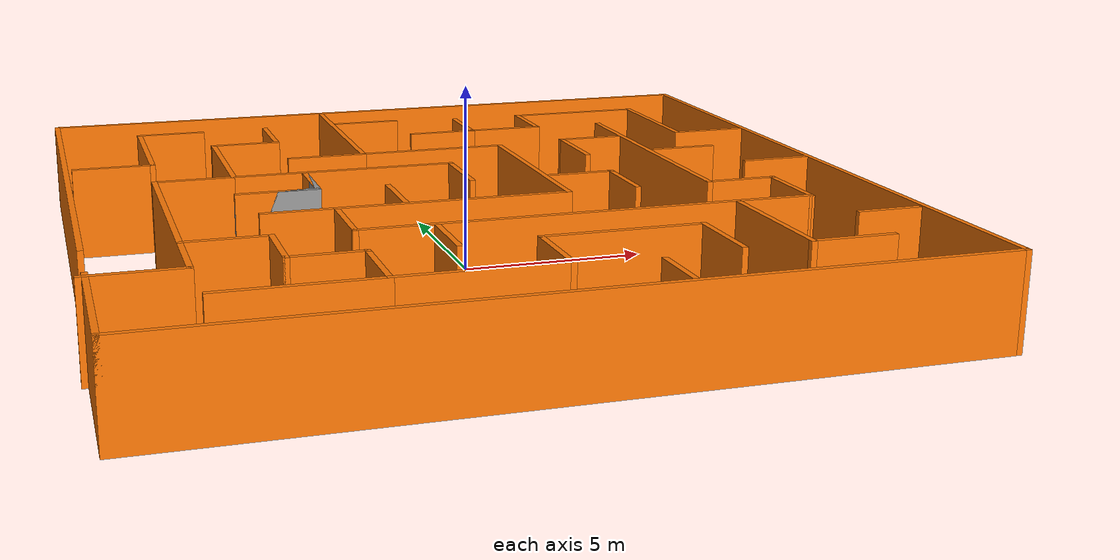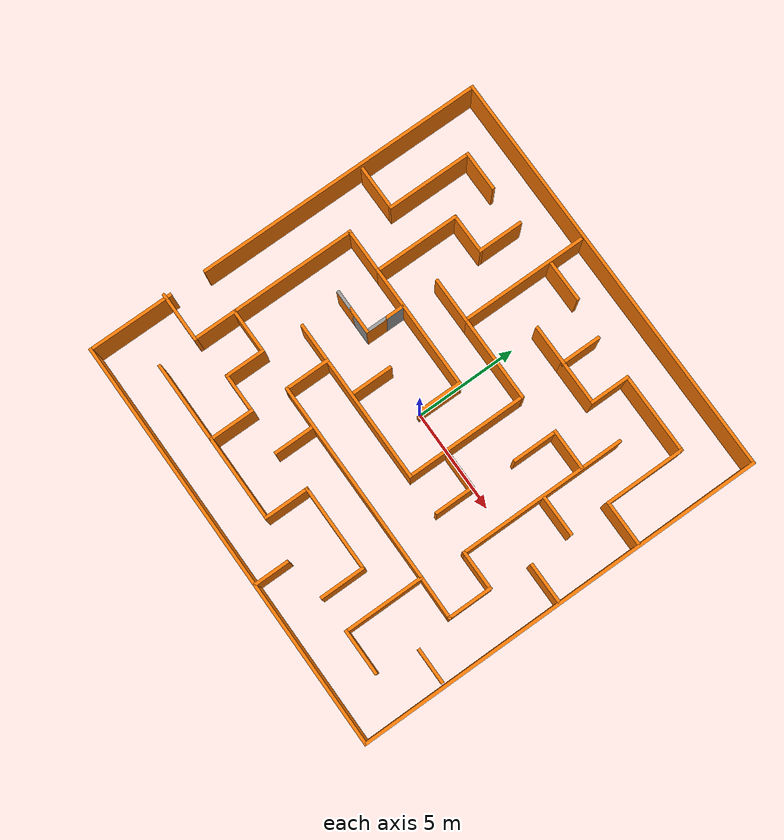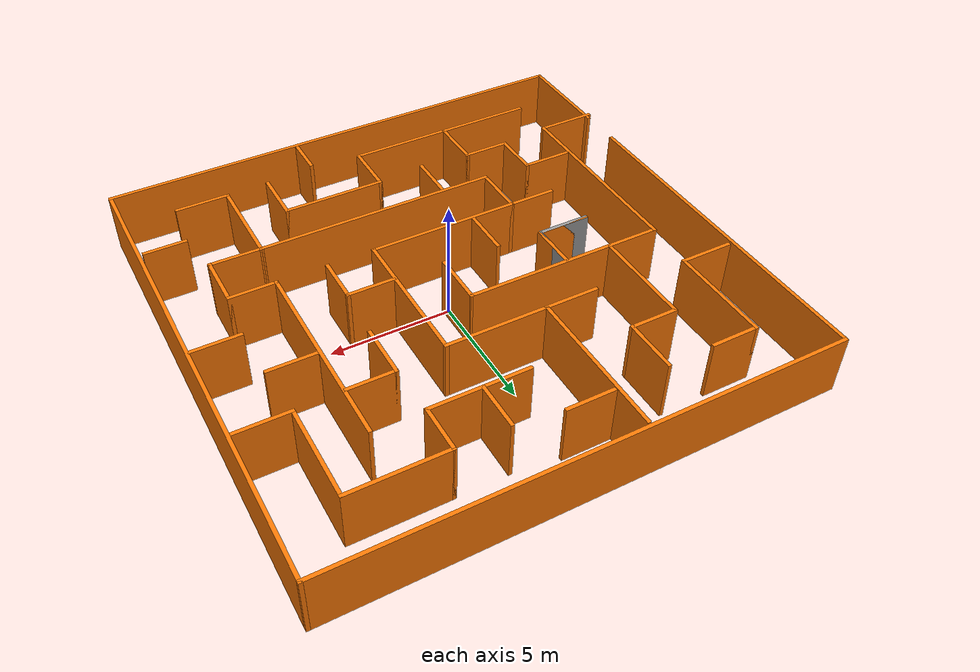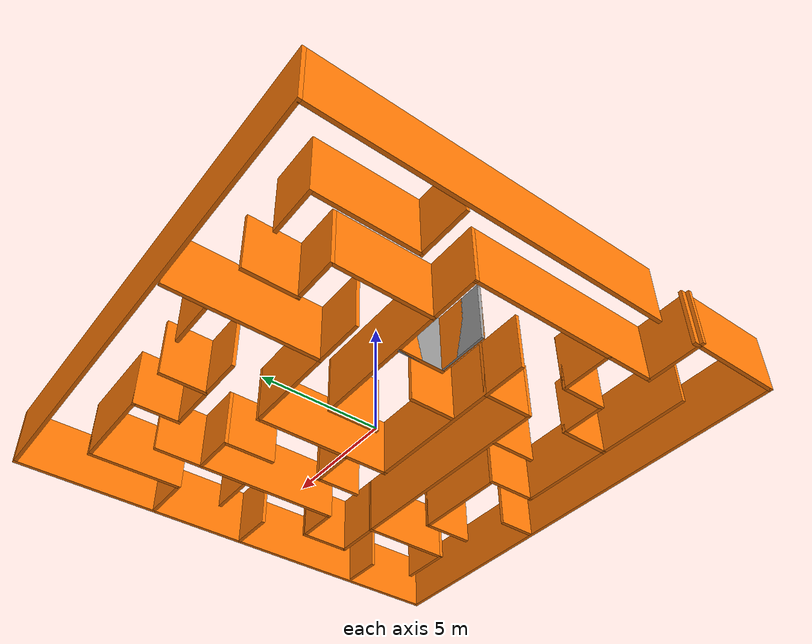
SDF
<?xml version='1.0'?>
<sdf version='1.7'>
  <model name='Untitled'>
    <pose>-0.094709 0.05645 0 0 -0 0</pose>
    <link name='Wall_0'>
      <collision name='Wall_0_Collision'>
        <geometry>
          <box>
            <size>14.25 0.15 2.5</size>
          </box>
        </geometry>
        <pose>0 0 1.25 0 -0 0</pose>
      </collision>
      <visual name='Wall_0_Visual'>
        <pose>0 0 1.25 0 -0 0</pose>
        <geometry>
          <box>
            <size>14.25 0.15 2.5</size>
          </box>
        </geometry>
        <material>
          <script>
            <uri>file://media/materials/scripts/gazebo.material</uri>
            <name>Gazebo/Grey</name>
          </script>
          <ambient>0.996078 0.47451 0.0196078 1</ambient>
        </material>
        <meta>
          <layer>0</layer>
        </meta>
      </visual>
      <pose>-10.1014 2.93572 0 0 -0 -1.5708</pose>
    </link>
    <link name='Wall_11'>
      <collision name='Wall_11_Collision'>
        <geometry>
          <box>
            <size>2.25 0.15 2.5</size>
          </box>
        </geometry>
        <pose>0 0 1.25 0 -0 0</pose>
      </collision>
      <visual name='Wall_11_Visual'>
        <pose>0 0 1.25 0 -0 0</pose>
        <geometry>
          <box>
            <size>2.25 0.15 2.5</size>
          </box>
        </geometry>
        <material>
          <script>
            <uri>file://media/materials/scripts/gazebo.material</uri>
            <name>Gazebo/Grey</name>
          </script>
          <ambient>0.996078 0.47451 0.0196078 1</ambient>
        </material>
        <meta>
          <layer>0</layer>
        </meta>
      </visual>
      <pose>-3.94861 7.08988 0 0 -0 -1.5708</pose>
    </link>
    <link name='Wall_12'>
      <collision name='Wall_12_Collision'>
        <geometry>
          <box>
            <size>2 0.15 2.5</size>
          </box>
        </geometry>
        <pose>0 0 1.25 0 -0 0</pose>
      </collision>
      <visual name='Wall_12_Visual'>
        <pose>0 0 1.25 0 -0 0</pose>
        <geometry>
          <box>
            <size>2 0.15 2.5</size>
          </box>
        </geometry>
        <material>
          <script>
            <uri>file://media/materials/scripts/gazebo.material</uri>
            <name>Gazebo/Grey</name>
          </script>
          <ambient>0.996078 0.47451 0.0196078 1</ambient>
        </material>
        <meta>
          <layer>0</layer>
        </meta>
      </visual>
      <pose>-4.87361 6.03988 0 0 -0 3.14159</pose>
    </link>
    <link name='Wall_13'>
      <collision name='Wall_13_Collision'>
        <geometry>
          <box>
            <size>4.25 0.15 2.5</size>
          </box>
        </geometry>
        <pose>0 0 1.25 0 -0 0</pose>
      </collision>
      <visual name='Wall_13_Visual'>
        <pose>0 0 1.25 0 -0 0</pose>
        <geometry>
          <box>
            <size>4.25 0.15 2.5</size>
          </box>
        </geometry>
        <material>
          <script>
            <uri>file://media/materials/scripts/gazebo.material</uri>
            <name>Gazebo/Grey</name>
          </script>
          <ambient>0.996078 0.47451 0.0196078 1</ambient>
        </material>
        <meta>
          <layer>0</layer>
        </meta>
      </visual>
      <pose>-5.79861 3.98988 0 0 -0 -1.5708</pose>
    </link>
    <link name='Wall_14'>
      <collision name='Wall_14_Collision'>
        <geometry>
          <box>
            <size>2.25 0.15 2.5</size>
          </box>
        </geometry>
        <pose>0 0 1.25 0 -0 0</pose>
      </collision>
      <visual name='Wall_14_Visual'>
        <pose>0 0 1.25 0 -0 0</pose>
        <geometry>
          <box>
            <size>2.25 0.15 2.5</size>
          </box>
        </geometry>
        <material>
          <script>
            <uri>file://media/materials/scripts/gazebo.material</uri>
            <name>Gazebo/Grey</name>
          </script>
          <ambient>0.996078 0.47451 0.0196078 1</ambient>
        </material>
        <meta>
          <layer>0</layer>
        </meta>
      </visual>
      <pose>-6.84861 1.93988 0 0 -0 3.14159</pose>
    </link>
    <link name='Wall_15'>
      <collision name='Wall_15_Collision'>
        <geometry>
          <box>
            <size>8.25 0.15 2.5</size>
          </box>
        </geometry>
        <pose>0 0 1.25 0 -0 0</pose>
      </collision>
      <visual name='Wall_15_Visual'>
        <pose>0 0 1.25 0 -0 0</pose>
        <geometry>
          <box>
            <size>8.25 0.15 2.5</size>
          </box>
        </geometry>
        <material>
          <script>
            <uri>file://media/materials/scripts/gazebo.material</uri>
            <name>Gazebo/Grey</name>
          </script>
          <ambient>0.996078 0.47451 0.0196078 1</ambient>
        </material>
        <meta>
          <layer>0</layer>
        </meta>
      </visual>
      <pose>-7.89861 -2.11012 0 0 -0 -1.5708</pose>
    </link>
    <link name='Wall_16'>
      <collision name='Wall_16_Collision'>
        <geometry>
          <box>
            <size>2.5 0.15 2.5</size>
          </box>
        </geometry>
        <pose>0 0 1.25 0 -0 0</pose>
      </collision>
      <visual name='Wall_16_Visual'>
        <pose>0 0 1.25 0 -0 0</pose>
        <geometry>
          <box>
            <size>2.5 0.15 2.5</size>
          </box>
        </geometry>
        <material>
          <script>
            <uri>file://media/materials/scripts/gazebo.material</uri>
            <name>Gazebo/Grey</name>
          </script>
          <ambient>0.996078 0.47451 0.0196078 1</ambient>
        </material>
        <meta>
          <layer>0</layer>
        </meta>
      </visual>
      <pose>-9.07361 -6.16012 0 0 -0 3.14159</pose>
    </link>
    <link name='Wall_18'>
      <collision name='Wall_18_Collision'>
        <geometry>
          <box>
            <size>2.25 0.15 2.5</size>
          </box>
        </geometry>
        <pose>0 0 1.25 0 -0 0</pose>
      </collision>
      <visual name='Wall_18_Visual'>
        <pose>0 0 1.25 0 -0 0</pose>
        <geometry>
          <box>
            <size>2.25 0.15 2.5</size>
          </box>
        </geometry>
        <material>
          <script>
            <uri>file://media/materials/scripts/gazebo.material</uri>
            <name>Gazebo/Grey</name>
          </script>
          <ambient>0.996078 0.47451 0.0196078 1</ambient>
        </material>
        <meta>
          <layer>0</layer>
        </meta>
      </visual>
      <pose>-6.83639 -4.10416 0 0 -0 0</pose>
    </link>
    <link name='Wall_19'>
      <collision name='Wall_19_Collision'>
        <geometry>
          <box>
            <size>2 0.15 2.5</size>
          </box>
        </geometry>
        <pose>0 0 1.25 0 -0 0</pose>
      </collision>
      <visual name='Wall_19_Visual'>
        <pose>0 0 1.25 0 -0 0</pose>
        <geometry>
          <box>
            <size>2 0.15 2.5</size>
          </box>
        </geometry>
        <material>
          <script>
            <uri>file://media/materials/scripts/gazebo.material</uri>
            <name>Gazebo/Grey</name>
          </script>
          <ambient>0.996078 0.47451 0.0196078 1</ambient>
        </material>
        <meta>
          <layer>0</layer>
        </meta>
      </visual>
      <pose>-5.78639 -5.02916 0 0 -0 -1.5708</pose>
    </link>
    <link name='Wall_2'>
      <collision name='Wall_2_Collision'>
        <geometry>
          <box>
            <size>4.25 0.15 2.5</size>
          </box>
        </geometry>
        <pose>0 0 1.25 0 -0 0</pose>
      </collision>
      <visual name='Wall_2_Visual'>
        <pose>0 0 1.25 0 -0 0</pose>
        <geometry>
          <box>
            <size>4.25 0.15 2.5</size>
          </box>
        </geometry>
        <material>
          <script>
            <uri>file://media/materials/scripts/gazebo.material</uri>
            <name>Gazebo/Grey</name>
          </script>
          <ambient>0.996078 0.47451 0.0196078 1</ambient>
        </material>
        <meta>
          <layer>0</layer>
        </meta>
      </visual>
      <pose>-10.1014 -8 0 0 -0 -1.5708</pose>
    </link>
    <link name='Wall_20'>
      <collision name='Wall_20_Collision'>
        <geometry>
          <box>
            <size>2 0.15 2.5</size>
          </box>
        </geometry>
        <pose>0 0 1.25 0 -0 0</pose>
      </collision>
      <visual name='Wall_20_Visual'>
        <pose>0 0 1.25 0 -0 0</pose>
        <geometry>
          <box>
            <size>2 0.15 2.5</size>
          </box>
        </geometry>
        <material>
          <script>
            <uri>file://media/materials/scripts/gazebo.material</uri>
            <name>Gazebo/Grey</name>
          </script>
          <ambient>0.996078 0.47451 0.0196078 1</ambient>
        </material>
        <meta>
          <layer>0</layer>
        </meta>
      </visual>
      <pose>-4.86139 -5.95416 0 0 -0 0</pose>
    </link>
    <link name='Wall_21'>
      <collision name='Wall_21_Collision'>
        <geometry>
          <box>
            <size>2.25 0.15 2.5</size>
          </box>
        </geometry>
        <pose>0 0 1.25 0 -0 0</pose>
      </collision>
      <visual name='Wall_21_Visual'>
        <pose>0 0 1.25 0 -0 0</pose>
        <geometry>
          <box>
            <size>2.25 0.15 2.5</size>
          </box>
        </geometry>
        <material>
          <script>
            <uri>file://media/materials/scripts/gazebo.material</uri>
            <name>Gazebo/Grey</name>
          </script>
          <ambient>0.996078 0.47451 0.0196078 1</ambient>
        </material>
        <meta>
          <layer>0</layer>
        </meta>
      </visual>
      <pose>-3.93639 -7.00416 0 0 -0 -1.5708</pose>
    </link>
    <link name='Wall_22'>
      <collision name='Wall_22_Collision'>
        <geometry>
          <box>
            <size>4 0.15 2.5</size>
          </box>
        </geometry>
        <pose>0 0 1.25 0 -0 0</pose>
      </collision>
      <visual name='Wall_22_Visual'>
        <pose>0 0 1.25 0 -0 0</pose>
        <geometry>
          <box>
            <size>4 0.15 2.5</size>
          </box>
        </geometry>
        <material>
          <script>
            <uri>file://media/materials/scripts/gazebo.material</uri>
            <name>Gazebo/Grey</name>
          </script>
          <ambient>0.996078 0.47451 0.0196078 1</ambient>
        </material>
        <meta>
          <layer>0</layer>
        </meta>
      </visual>
      <pose>-5.86139 -8.05416 0 0 -0 3.14159</pose>
    </link>
    <link name='Wall_24'>
      <collision name='Wall_24_Collision'>
        <geometry>
          <box>
            <size>4.25 0.15 2.5</size>
          </box>
        </geometry>
        <pose>0 0 1.25 0 -0 0</pose>
      </collision>
      <visual name='Wall_24_Visual'>
        <pose>0 0 1.25 0 -0 0</pose>
        <geometry>
          <box>
            <size>4.25 0.15 2.5</size>
          </box>
        </geometry>
        <material>
          <script>
            <uri>file://media/materials/scripts/gazebo.material</uri>
            <name>Gazebo/Grey</name>
          </script>
          <ambient>0.996078 0.47451 0.0196078 1</ambient>
        </material>
        <meta>
          <layer>0</layer>
        </meta>
      </visual>
      <pose>-1.88639 -8.05416 0 0 -0 0</pose>
    </link>
    <link name='Wall_25'>
      <collision name='Wall_25_Collision'>
        <geometry>
          <box>
            <size>2.25 0.15 2.5</size>
          </box>
        </geometry>
        <pose>0 0 1.25 0 -0 0</pose>
      </collision>
      <visual name='Wall_25_Visual'>
        <pose>0 0 1.25 0 -0 0</pose>
        <geometry>
          <box>
            <size>2.25 0.15 2.5</size>
          </box>
        </geometry>
        <material>
          <script>
            <uri>file://media/materials/scripts/gazebo.material</uri>
            <name>Gazebo/Grey</name>
          </script>
          <ambient>0.996078 0.47451 0.0196078 1</ambient>
        </material>
        <meta>
          <layer>0</layer>
        </meta>
      </visual>
      <pose>0.163609 -7.00416 0 0 -0 1.5708</pose>
    </link>
    <link name='Wall_28'>
      <collision name='Wall_28_Collision'>
        <geometry>
          <box>
            <size>4.25 0.15 2.5</size>
          </box>
        </geometry>
        <pose>0 0 1.25 0 -0 0</pose>
      </collision>
      <visual name='Wall_28_Visual'>
        <pose>0 0 1.25 0 -0 0</pose>
        <geometry>
          <box>
            <size>4.25 0.15 2.5</size>
          </box>
        </geometry>
        <material>
          <script>
            <uri>file://media/materials/scripts/gazebo.material</uri>
            <name>Gazebo/Grey</name>
          </script>
          <ambient>0.996078 0.47451 0.0196078 1</ambient>
        </material>
        <meta>
          <layer>0</layer>
        </meta>
      </visual>
      <pose>2.21361 -5.95416 0 0 -0 0</pose>
    </link>
    <link name='Wall_29'>
      <collision name='Wall_29_Collision'>
        <geometry>
          <box>
            <size>2.25 0.15 2.5</size>
          </box>
        </geometry>
        <pose>0 0 1.25 0 -0 0</pose>
      </collision>
      <visual name='Wall_29_Visual'>
        <pose>0 0 1.25 0 -0 0</pose>
        <geometry>
          <box>
            <size>2.25 0.15 2.5</size>
          </box>
        </geometry>
        <material>
          <script>
            <uri>file://media/materials/scripts/gazebo.material</uri>
            <name>Gazebo/Grey</name>
          </script>
          <ambient>0.996078 0.47451 0.0196078 1</ambient>
        </material>
        <meta>
          <layer>0</layer>
        </meta>
      </visual>
      <pose>4.26361 -7.00416 0 0 -0 -1.5708</pose>
    </link>
    <link name='Wall_3'>
      <collision name='Wall_3_Collision'>
        <geometry>
          <box>
            <size>20.5 0.15 2.5</size>
          </box>
        </geometry>
        <pose>0 0 1.25 0 -0 0</pose>
      </collision>
      <visual name='Wall_3_Visual'>
        <pose>0 0 1.25 0 -0 0</pose>
        <geometry>
          <box>
            <size>20.5 0.15 2.5</size>
          </box>
        </geometry>
        <material>
          <script>
            <uri>file://media/materials/scripts/gazebo.material</uri>
            <name>Gazebo/Grey</name>
          </script>
          <ambient>0.996078 0.47451 0.0196078 1</ambient>
        </material>
        <meta>
          <layer>0</layer>
        </meta>
      </visual>
      <pose>0.073606 -10.05 0 0 -0 0</pose>
    </link>
    <link name='Wall_31'>
      <collision name='Wall_31_Collision'>
        <geometry>
          <box>
            <size>1.75 0.15 2.5</size>
          </box>
        </geometry>
        <pose>0 0 1.25 0 -0 0</pose>
      </collision>
      <visual name='Wall_31_Visual'>
        <pose>0 0 1.25 0 -0 0</pose>
        <geometry>
          <box>
            <size>1.75 0.15 2.5</size>
          </box>
        </geometry>
        <material>
          <script>
            <uri>file://media/materials/scripts/gazebo.material</uri>
            <name>Gazebo/Grey</name>
          </script>
          <ambient>0.996078 0.47451 0.0196078 1</ambient>
        </material>
        <meta>
          <layer>0</layer>
        </meta>
      </visual>
      <pose>2.20418 -9.21084 0 0 -0 1.5708</pose>
    </link>
    <link name='Wall_33'>
      <collision name='Wall_33_Collision'>
        <geometry>
          <box>
            <size>2.25 0.15 2.5</size>
          </box>
        </geometry>
        <pose>0 0 1.25 0 -0 0</pose>
      </collision>
      <visual name='Wall_33_Visual'>
        <pose>0 0 1.25 0 -0 0</pose>
        <geometry>
          <box>
            <size>2.25 0.15 2.5</size>
          </box>
        </geometry>
        <material>
          <script>
            <uri>file://media/materials/scripts/gazebo.material</uri>
            <name>Gazebo/Grey</name>
          </script>
          <ambient>0.996078 0.47451 0.0196078 1</ambient>
        </material>
        <meta>
          <layer>0</layer>
        </meta>
      </visual>
      <pose>7.06086 -8.04195 0 0 -0 3.14159</pose>
    </link>
    <link name='Wall_34'>
      <collision name='Wall_34_Collision'>
        <geometry>
          <box>
            <size>4 0.15 2.5</size>
          </box>
        </geometry>
        <pose>0 0 1.25 0 -0 0</pose>
      </collision>
      <visual name='Wall_34_Visual'>
        <pose>0 0 1.25 0 -0 0</pose>
        <geometry>
          <box>
            <size>4 0.15 2.5</size>
          </box>
        </geometry>
        <material>
          <script>
            <uri>file://media/materials/scripts/gazebo.material</uri>
            <name>Gazebo/Grey</name>
          </script>
          <ambient>0.996078 0.47451 0.0196078 1</ambient>
        </material>
        <meta>
          <layer>0</layer>
        </meta>
      </visual>
      <pose>6.01086 -6.11695 0 0 -0 1.5708</pose>
    </link>
    <link name='Wall_35'>
      <collision name='Wall_35_Collision'>
        <geometry>
          <box>
            <size>10 0.15 2.5</size>
          </box>
        </geometry>
        <pose>0 0 1.25 0 -0 0</pose>
      </collision>
      <visual name='Wall_35_Visual'>
        <pose>0 0 1.25 0 -0 0</pose>
        <geometry>
          <box>
            <size>10 0.15 2.5</size>
          </box>
        </geometry>
        <material>
          <script>
            <uri>file://media/materials/scripts/gazebo.material</uri>
            <name>Gazebo/Grey</name>
          </script>
          <ambient>0.996078 0.47451 0.0196078 1</ambient>
        </material>
        <meta>
          <layer>0</layer>
        </meta>
      </visual>
      <pose>1.08586 -4.19195 0 0 -0 3.14159</pose>
    </link>
    <link name='Wall_36'>
      <collision name='Wall_36_Collision'>
        <geometry>
          <box>
            <size>2.25 0.15 2.5</size>
          </box>
        </geometry>
        <pose>0 0 1.25 0 -0 0</pose>
      </collision>
      <visual name='Wall_36_Visual'>
        <pose>0 0 1.25 0 -0 0</pose>
        <geometry>
          <box>
            <size>2.25 0.15 2.5</size>
          </box>
        </geometry>
        <material>
          <script>
            <uri>file://media/materials/scripts/gazebo.material</uri>
            <name>Gazebo/Grey</name>
          </script>
          <ambient>0.996078 0.47451 0.0196078 1</ambient>
        </material>
        <meta>
          <layer>0</layer>
        </meta>
      </visual>
      <pose>-3.83914 -3.14195 0 0 -0 1.5708</pose>
    </link>
    <link name='Wall_37'>
      <collision name='Wall_37_Collision'>
        <geometry>
          <box>
            <size>6.25 0.15 2.5</size>
          </box>
        </geometry>
        <pose>0 0 1.25 0 -0 0</pose>
      </collision>
      <visual name='Wall_37_Visual'>
        <pose>0 0 1.25 0 -0 0</pose>
        <geometry>
          <box>
            <size>6.25 0.15 2.5</size>
          </box>
        </geometry>
        <material>
          <script>
            <uri>file://media/materials/scripts/gazebo.material</uri>
            <name>Gazebo/Grey</name>
          </script>
          <ambient>0.996078 0.47451 0.0196078 1</ambient>
        </material>
        <meta>
          <layer>0</layer>
        </meta>
      </visual>
      <pose>-0.789143 -2.09195 0 0 -0 0</pose>
    </link>
    <link name='Wall_38'>
      <collision name='Wall_38_Collision'>
        <geometry>
          <box>
            <size>6 0.15 2.5</size>
          </box>
        </geometry>
        <pose>0 0 1.25 0 -0 0</pose>
      </collision>
      <visual name='Wall_38_Visual'>
        <pose>0 0 1.25 0 -0 0</pose>
        <geometry>
          <box>
            <size>6 0.15 2.5</size>
          </box>
        </geometry>
        <material>
          <script>
            <uri>file://media/materials/scripts/gazebo.material</uri>
            <name>Gazebo/Grey</name>
          </script>
          <ambient>0.996078 0.47451 0.0196078 1</ambient>
        </material>
        <meta>
          <layer>0</layer>
        </meta>
      </visual>
      <pose>2.26086 0.833052 0 0 -0 1.5708</pose>
    </link>
    <link name='Wall_39'>
      <collision name='Wall_39_Collision'>
        <geometry>
          <box>
            <size>4.25 0.15 2.5</size>
          </box>
        </geometry>
        <pose>0 0 1.25 0 -0 0</pose>
      </collision>
      <visual name='Wall_39_Visual'>
        <pose>0 0 1.25 0 -0 0</pose>
        <geometry>
          <box>
            <size>4.25 0.15 2.5</size>
          </box>
        </geometry>
        <material>
          <script>
            <uri>file://media/materials/scripts/gazebo.material</uri>
            <name>Gazebo/Grey</name>
          </script>
          <ambient>0.996078 0.47451 0.0196078 1</ambient>
        </material>
        <meta>
          <layer>0</layer>
        </meta>
      </visual>
      <pose>0.210857 3.75805 0 0 -0 3.14159</pose>
    </link>
    <link name='Wall_4'>
      <collision name='Wall_4_Collision'>
        <geometry>
          <box>
            <size>20.25 0.15 2.5</size>
          </box>
        </geometry>
        <pose>0 0 1.25 0 -0 0</pose>
      </collision>
      <visual name='Wall_4_Visual'>
        <pose>0 0 1.25 0 -0 0</pose>
        <geometry>
          <box>
            <size>20.25 0.15 2.5</size>
          </box>
        </geometry>
        <material>
          <script>
            <uri>file://media/materials/scripts/gazebo.material</uri>
            <name>Gazebo/Grey</name>
          </script>
          <ambient>0.996078 0.47451 0.0196078 1</ambient>
        </material>
        <meta>
          <layer>0</layer>
        </meta>
      </visual>
      <pose>10.2486 -0 0 0 -0 1.5708</pose>
    </link>
    <link name='Wall_40'>
      <collision name='Wall_40_Collision'>
        <geometry>
          <box>
            <size>6.25 0.15 2.5</size>
          </box>
        </geometry>
        <pose>0 0 1.25 0 -0 0</pose>
      </collision>
      <visual name='Wall_40_Visual'>
        <pose>0 0 1.25 0 -0 0</pose>
        <geometry>
          <box>
            <size>6.25 0.15 2.5</size>
          </box>
        </geometry>
        <material>
          <script>
            <uri>file://media/materials/scripts/gazebo.material</uri>
            <name>Gazebo/Grey</name>
          </script>
          <ambient>0.996078 0.47451 0.0196078 1</ambient>
        </material>
        <meta>
          <layer>0</layer>
        </meta>
      </visual>
      <pose>-1.83914 6.80805 0 0 -0 1.5708</pose>
    </link>
    <link name='Wall_42'>
      <collision name='Wall_42_Collision'>
        <geometry>
          <box>
            <size>2 0.15 2.5</size>
          </box>
        </geometry>
        <pose>0 0 1.25 0 -0 0</pose>
      </collision>
      <visual name='Wall_42_Visual'>
        <pose>0 0 1.25 0 -0 0</pose>
        <geometry>
          <box>
            <size>2 0.15 2.5</size>
          </box>
        </geometry>
        <material>
          <script>
            <uri>file://media/materials/scripts/gazebo.material</uri>
            <name>Gazebo/Grey</name>
          </script>
          <ambient>0.996078 0.47451 0.0196078 1</ambient>
        </material>
        <meta>
          <layer>0</layer>
        </meta>
      </visual>
      <pose>-0.747075 8.20141 0 0 -0 0</pose>
    </link>
    <link name='Wall_44'>
      <collision name='Wall_44_Collision'>
        <geometry>
          <box>
            <size>2.25 0.15 2.5</size>
          </box>
        </geometry>
        <pose>0 0 1.25 0 -0 0</pose>
      </collision>
      <visual name='Wall_44_Visual'>
        <pose>0 0 1.25 0 -0 0</pose>
        <geometry>
          <box>
            <size>2.25 0.15 2.5</size>
          </box>
        </geometry>
        <material>
          <script>
            <uri>file://media/materials/scripts/gazebo.material</uri>
            <name>Gazebo/Grey</name>
          </script>
          <ambient>0.996078 0.47451 0.0196078 1</ambient>
        </material>
        <meta>
          <layer>0</layer>
        </meta>
      </visual>
      <pose>-2.88914 3.75805 0 0 -0 3.14159</pose>
    </link>
    <link name='Wall_46'>
      <collision name='Wall_46_Collision'>
        <geometry>
          <box>
            <size>2.25 0.15 2.5</size>
          </box>
        </geometry>
        <pose>0 0 1.25 0 -0 0</pose>
      </collision>
      <visual name='Wall_46_Visual'>
        <pose>0 0 1.25 0 -0 0</pose>
        <geometry>
          <box>
            <size>2.25 0.15 2.5</size>
          </box>
        </geometry>
        <material>
          <script>
            <uri>file://media/materials/scripts/gazebo.material</uri>
            <name>Gazebo/Grey</name>
          </script>
          <ambient>0.996078 0.47451 0.0196078 1</ambient>
        </material>
        <meta>
          <layer>0</layer>
        </meta>
      </visual>
      <pose>0.235289 0.88362 0 0 -0 1.5708</pose>
    </link>
    <link name='Wall_48'>
      <collision name='Wall_48_Collision'>
        <geometry>
          <box>
            <size>6.1839 0.15 2.5</size>
          </box>
        </geometry>
        <pose>0 0 1.25 0 -0 0</pose>
      </collision>
      <visual name='Wall_48_Visual'>
        <pose>0 0 1.25 0 -0 0</pose>
        <geometry>
          <box>
            <size>6.1839 0.15 2.5</size>
          </box>
        </geometry>
        <material>
          <script>
            <uri>file://media/materials/scripts/gazebo.material</uri>
            <name>Gazebo/Grey</name>
          </script>
          <ambient>0.996078 0.47451 0.0196078 1</ambient>
        </material>
        <meta>
          <layer>0</layer>
        </meta>
      </visual>
      <pose>-2.78166 1.93675 0 0 -0 3.14055</pose>
    </link>
    <link name='Wall_5'>
      <collision name='Wall_5_Collision'>
        <geometry>
          <box>
            <size>20.5 0.15 2.5</size>
          </box>
        </geometry>
        <pose>0 0 1.25 0 -0 0</pose>
      </collision>
      <visual name='Wall_5_Visual'>
        <pose>0 0 1.25 0 -0 0</pose>
        <geometry>
          <box>
            <size>20.5 0.15 2.5</size>
          </box>
        </geometry>
        <material>
          <script>
            <uri>file://media/materials/scripts/gazebo.material</uri>
            <name>Gazebo/Grey</name>
          </script>
          <ambient>0.996078 0.47451 0.0196078 1</ambient>
        </material>
        <meta>
          <layer>0</layer>
        </meta>
      </visual>
      <pose>0.073606 10.05 0 0 -0 3.14159</pose>
    </link>
    <link name='Wall_50'>
      <collision name='Wall_50_Collision'>
        <geometry>
          <box>
            <size>2 0.15 2.5</size>
          </box>
        </geometry>
        <pose>0 0 1.25 0 -0 0</pose>
      </collision>
      <visual name='Wall_50_Visual'>
        <pose>0 0 1.25 0 -0 0</pose>
        <geometry>
          <box>
            <size>2 0.15 2.5</size>
          </box>
        </geometry>
        <material>
          <script>
            <uri>file://media/materials/scripts/gazebo.material</uri>
            <name>Gazebo/Grey</name>
          </script>
          <ambient>1 1 1 1</ambient>
        </material>
        <meta>
          <layer>0</layer>
        </meta>
      </visual>
      <pose>-3.88708 0.93904 0 0 -0 -1.5708</pose>
    </link>
    <link name='Wall_51'>
      <collision name='Wall_51_Collision'>
        <geometry>
          <box>
            <size>2.25 0.15 2.5</size>
          </box>
        </geometry>
        <pose>0 0 1.25 0 -0 0</pose>
      </collision>
      <visual name='Wall_51_Visual'>
        <pose>0 0 1.25 0 -0 0</pose>
        <geometry>
          <box>
            <size>2.25 0.15 2.5</size>
          </box>
        </geometry>
        <material>
          <script>
            <uri>file://media/materials/scripts/gazebo.material</uri>
            <name>Gazebo/Grey</name>
          </script>
          <ambient>1 1 1 1</ambient>
        </material>
        <meta>
          <layer>0</layer>
        </meta>
      </visual>
      <pose>-4.93708 0.01404 0 0 -0 3.14159</pose>
    </link>
    <link name='Wall_53'>
      <collision name='Wall_53_Collision'>
        <geometry>
          <box>
            <size>2 0.15 2.5</size>
          </box>
        </geometry>
        <pose>0 0 1.25 0 -0 0</pose>
      </collision>
      <visual name='Wall_53_Visual'>
        <pose>0 0 1.25 0 -0 0</pose>
        <geometry>
          <box>
            <size>2 0.15 2.5</size>
          </box>
        </geometry>
        <material>
          <script>
            <uri>file://media/materials/scripts/gazebo.material</uri>
            <name>Gazebo/Grey</name>
          </script>
          <ambient>0.996078 0.47451 0.0196078 1</ambient>
        </material>
        <meta>
          <layer>0</layer>
        </meta>
      </visual>
      <pose>-2.04124 -1.02569 0 0 -0 1.5708</pose>
    </link>
    <link name='Wall_58'>
      <collision name='Wall_58_Collision'>
        <geometry>
          <box>
            <size>2 0.15 2.5</size>
          </box>
        </geometry>
        <pose>0 0 1.25 0 -0 0</pose>
      </collision>
      <visual name='Wall_58_Visual'>
        <pose>0 0 1.25 0 -0 0</pose>
        <geometry>
          <box>
            <size>2 0.15 2.5</size>
          </box>
        </geometry>
        <material>
          <script>
            <uri>file://media/materials/scripts/gazebo.material</uri>
            <name>Gazebo/Grey</name>
          </script>
          <ambient>0.996078 0.47451 0.0196078 1</ambient>
        </material>
        <meta>
          <layer>0</layer>
        </meta>
      </visual>
      <pose>-4.76414 -2.09195 0 0 -0 3.14159</pose>
    </link>
    <link name='Wall_60'>
      <collision name='Wall_60_Collision'>
        <geometry>
          <box>
            <size>2 0.15 2.5</size>
          </box>
        </geometry>
        <pose>0 0 1.25 0 -0 0</pose>
      </collision>
      <visual name='Wall_60_Visual'>
        <pose>0 0 1.25 0 -0 0</pose>
        <geometry>
          <box>
            <size>2 0.15 2.5</size>
          </box>
        </geometry>
        <material>
          <script>
            <uri>file://media/materials/scripts/gazebo.material</uri>
            <name>Gazebo/Grey</name>
          </script>
          <ambient>0.996078 0.47451 0.0196078 1</ambient>
        </material>
        <meta>
          <layer>0</layer>
        </meta>
      </visual>
      <pose>1.16029 6.04793 0 0 -0 0</pose>
    </link>
    <link name='Wall_61'>
      <collision name='Wall_61_Collision'>
        <geometry>
          <box>
            <size>2 0.15 2.5</size>
          </box>
        </geometry>
        <pose>0 0 1.25 0 -0 0</pose>
      </collision>
      <visual name='Wall_61_Visual'>
        <pose>0 0 1.25 0 -0 0</pose>
        <geometry>
          <box>
            <size>2 0.15 2.5</size>
          </box>
        </geometry>
        <material>
          <script>
            <uri>file://media/materials/scripts/gazebo.material</uri>
            <name>Gazebo/Grey</name>
          </script>
          <ambient>0.996078 0.47451 0.0196078 1</ambient>
        </material>
        <meta>
          <layer>0</layer>
        </meta>
      </visual>
      <pose>2.08529 6.97294 0 0 -0 1.5708</pose>
    </link>
    <link name='Wall_63'>
      <collision name='Wall_63_Collision'>
        <geometry>
          <box>
            <size>2.25 0.15 2.5</size>
          </box>
        </geometry>
        <pose>0 0 1.25 0 -0 0</pose>
      </collision>
      <visual name='Wall_63_Visual'>
        <pose>0 0 1.25 0 -0 0</pose>
        <geometry>
          <box>
            <size>2.25 0.15 2.5</size>
          </box>
        </geometry>
        <material>
          <script>
            <uri>file://media/materials/scripts/gazebo.material</uri>
            <name>Gazebo/Grey</name>
          </script>
          <ambient>0.996078 0.47451 0.0196078 1</ambient>
        </material>
        <meta>
          <layer>0</layer>
        </meta>
      </visual>
      <pose>3.13529 6.04793 0 0 -0 0</pose>
    </link>
    <link name='Wall_64'>
      <collision name='Wall_64_Collision'>
        <geometry>
          <box>
            <size>2 0.15 2.5</size>
          </box>
        </geometry>
        <pose>0 0 1.25 0 -0 0</pose>
      </collision>
      <visual name='Wall_64_Visual'>
        <pose>0 0 1.25 0 -0 0</pose>
        <geometry>
          <box>
            <size>2 0.15 2.5</size>
          </box>
        </geometry>
        <material>
          <script>
            <uri>file://media/materials/scripts/gazebo.material</uri>
            <name>Gazebo/Grey</name>
          </script>
          <ambient>0.996078 0.47451 0.0196078 1</ambient>
        </material>
        <meta>
          <layer>0</layer>
        </meta>
      </visual>
      <pose>4.18529 6.97294 0 0 -0 1.5708</pose>
    </link>
    <link name='Wall_65'>
      <collision name='Wall_65_Collision'>
        <geometry>
          <box>
            <size>4 0.15 2.5</size>
          </box>
        </geometry>
        <pose>0 0 1.25 0 -0 0</pose>
      </collision>
      <visual name='Wall_65_Visual'>
        <pose>0 0 1.25 0 -0 0</pose>
        <geometry>
          <box>
            <size>4 0.15 2.5</size>
          </box>
        </geometry>
        <material>
          <script>
            <uri>file://media/materials/scripts/gazebo.material</uri>
            <name>Gazebo/Grey</name>
          </script>
          <ambient>0.996078 0.47451 0.0196078 1</ambient>
        </material>
        <meta>
          <layer>0</layer>
        </meta>
      </visual>
      <pose>6.11029 7.89794 0 0 -0 0</pose>
    </link>
    <link name='Wall_66'>
      <collision name='Wall_66_Collision'>
        <geometry>
          <box>
            <size>4 0.15 2.5</size>
          </box>
        </geometry>
        <pose>0 0 1.25 0 -0 0</pose>
      </collision>
      <visual name='Wall_66_Visual'>
        <pose>0 0 1.25 0 -0 0</pose>
        <geometry>
          <box>
            <size>4 0.15 2.5</size>
          </box>
        </geometry>
        <material>
          <script>
            <uri>file://media/materials/scripts/gazebo.material</uri>
            <name>Gazebo/Grey</name>
          </script>
          <ambient>0.996078 0.47451 0.0196078 1</ambient>
        </material>
        <meta>
          <layer>0</layer>
        </meta>
      </visual>
      <pose>8.03529 5.97294 0 0 -0 -1.5708</pose>
    </link>
    <link name='Wall_67'>
      <collision name='Wall_67_Collision'>
        <geometry>
          <box>
            <size>2.25 0.15 2.5</size>
          </box>
        </geometry>
        <pose>0 0 1.25 0 -0 0</pose>
      </collision>
      <visual name='Wall_67_Visual'>
        <pose>0 0 1.25 0 -0 0</pose>
        <geometry>
          <box>
            <size>2.25 0.15 2.5</size>
          </box>
        </geometry>
        <material>
          <script>
            <uri>file://media/materials/scripts/gazebo.material</uri>
            <name>Gazebo/Grey</name>
          </script>
          <ambient>0.996078 0.47451 0.0196078 1</ambient>
        </material>
        <meta>
          <layer>0</layer>
        </meta>
      </visual>
      <pose>9.08529 4.04793 0 0 -0 0</pose>
    </link>
    <link name='Wall_7'>
      <collision name='Wall_7_Collision'>
        <geometry>
          <box>
            <size>2.25 0.15 2.5</size>
          </box>
        </geometry>
        <pose>0 0 1.25 0 -0 0</pose>
      </collision>
      <visual name='Wall_7_Visual'>
        <pose>0 0 1.25 0 -0 0</pose>
        <geometry>
          <box>
            <size>2.25 0.15 2.5</size>
          </box>
        </geometry>
        <material>
          <script>
            <uri>file://media/materials/scripts/gazebo.material</uri>
            <name>Gazebo/Grey</name>
          </script>
          <ambient>0.996078 0.47451 0.0196078 1</ambient>
        </material>
        <meta>
          <layer>0</layer>
        </meta>
      </visual>
      <pose>-8.80528 4.01752 0 0 -0 0</pose>
    </link>
    <link name='Wall_71'>
      <collision name='Wall_71_Collision'>
        <geometry>
          <box>
            <size>8.25 0.15 2.5</size>
          </box>
        </geometry>
        <pose>0 0 1.25 0 -0 0</pose>
      </collision>
      <visual name='Wall_71_Visual'>
        <pose>0 0 1.25 0 -0 0</pose>
        <geometry>
          <box>
            <size>8.25 0.15 2.5</size>
          </box>
        </geometry>
        <material>
          <script>
            <uri>file://media/materials/scripts/gazebo.material</uri>
            <name>Gazebo/Grey</name>
          </script>
          <ambient>0.996078 0.47451 0.0196078 1</ambient>
        </material>
        <meta>
          <layer>0</layer>
        </meta>
      </visual>
      <pose>6.20349 1.93641 0 0 -0 -1.5708</pose>
    </link>
    <link name='Wall_72'>
      <collision name='Wall_72_Collision'>
        <geometry>
          <box>
            <size>2 0.15 2.5</size>
          </box>
        </geometry>
        <pose>0 0 1.25 0 -0 0</pose>
      </collision>
      <visual name='Wall_72_Visual'>
        <pose>0 0 1.25 0 -0 0</pose>
        <geometry>
          <box>
            <size>2 0.15 2.5</size>
          </box>
        </geometry>
        <material>
          <script>
            <uri>file://media/materials/scripts/gazebo.material</uri>
            <name>Gazebo/Grey</name>
          </script>
          <ambient>0.996078 0.47451 0.0196078 1</ambient>
        </material>
        <meta>
          <layer>0</layer>
        </meta>
      </visual>
      <pose>7.12849 -2.11359 0 0 -0 0</pose>
    </link>
    <link name='Wall_73'>
      <collision name='Wall_73_Collision'>
        <geometry>
          <box>
            <size>2.25 0.15 2.5</size>
          </box>
        </geometry>
        <pose>0 0 1.25 0 -0 0</pose>
      </collision>
      <visual name='Wall_73_Visual'>
        <pose>0 0 1.25 0 -0 0</pose>
        <geometry>
          <box>
            <size>2.25 0.15 2.5</size>
          </box>
        </geometry>
        <material>
          <script>
            <uri>file://media/materials/scripts/gazebo.material</uri>
            <name>Gazebo/Grey</name>
          </script>
          <ambient>0.996078 0.47451 0.0196078 1</ambient>
        </material>
        <meta>
          <layer>0</layer>
        </meta>
      </visual>
      <pose>8.05349 -3.16359 0 0 -0 -1.5708</pose>
    </link>
    <link name='Wall_75'>
      <collision name='Wall_75_Collision'>
        <geometry>
          <box>
            <size>2 0.15 2.5</size>
          </box>
        </geometry>
        <pose>0 0 1.25 0 -0 0</pose>
      </collision>
      <visual name='Wall_75_Visual'>
        <pose>0 0 1.25 0 -0 0</pose>
        <geometry>
          <box>
            <size>2 0.15 2.5</size>
          </box>
        </geometry>
        <material>
          <script>
            <uri>file://media/materials/scripts/gazebo.material</uri>
            <name>Gazebo/Grey</name>
          </script>
          <ambient>0.996078 0.47451 0.0196078 1</ambient>
        </material>
        <meta>
          <layer>0</layer>
        </meta>
      </visual>
      <pose>4.17307 -1.14874 0 0 -0 1.5708</pose>
    </link>
    <link name='Wall_76'>
      <collision name='Wall_76_Collision'>
        <geometry>
          <box>
            <size>2 0.15 2.5</size>
          </box>
        </geometry>
        <pose>0 0 1.25 0 -0 0</pose>
      </collision>
      <visual name='Wall_76_Visual'>
        <pose>0 0 1.25 0 -0 0</pose>
        <geometry>
          <box>
            <size>2 0.15 2.5</size>
          </box>
        </geometry>
        <material>
          <script>
            <uri>file://media/materials/scripts/gazebo.material</uri>
            <name>Gazebo/Grey</name>
          </script>
          <ambient>0.996078 0.47451 0.0196078 1</ambient>
        </material>
        <meta>
          <layer>0</layer>
        </meta>
      </visual>
      <pose>3.24807 -0.223744 0 0 -0 3.14159</pose>
    </link>
    <link name='Wall_78'>
      <collision name='Wall_78_Collision'>
        <geometry>
          <box>
            <size>2.25 0.15 2.5</size>
          </box>
        </geometry>
        <pose>0 0 1.25 0 -0 0</pose>
      </collision>
      <visual name='Wall_78_Visual'>
        <pose>0 0 1.25 0 -0 0</pose>
        <geometry>
          <box>
            <size>2.25 0.15 2.5</size>
          </box>
        </geometry>
        <material>
          <script>
            <uri>file://media/materials/scripts/gazebo.material</uri>
            <name>Gazebo/Grey</name>
          </script>
          <ambient>0.996078 0.47451 0.0196078 1</ambient>
        </material>
        <meta>
          <layer>0</layer>
        </meta>
      </visual>
      <pose>-4.93708 0.01404 0 0 -0 0</pose>
    </link>
    <link name='Wall_79'>
      <collision name='Wall_79_Collision'>
        <geometry>
          <box>
            <size>2 0.15 2.5</size>
          </box>
        </geometry>
        <pose>0 0 1.25 0 -0 0</pose>
      </collision>
      <visual name='Wall_79_Visual'>
        <pose>0 0 1.25 0 -0 0</pose>
        <geometry>
          <box>
            <size>2 0.15 2.5</size>
          </box>
        </geometry>
        <material>
          <script>
            <uri>file://media/materials/scripts/gazebo.material</uri>
            <name>Gazebo/Grey</name>
          </script>
          <ambient>0.996078 0.47451 0.0196078 1</ambient>
        </material>
        <meta>
          <layer>0</layer>
        </meta>
      </visual>
      <pose>-3.88708 0.93904 0 0 -0 1.5708</pose>
    </link>
    <link name='Wall_8'>
      <collision name='Wall_8_Collision'>
        <geometry>
          <box>
            <size>4.25 0.15 2.5</size>
          </box>
        </geometry>
        <pose>0 0 1.25 0 -0 0</pose>
      </collision>
      <visual name='Wall_8_Visual'>
        <pose>0 0 1.25 0 -0 0</pose>
        <geometry>
          <box>
            <size>4.25 0.15 2.5</size>
          </box>
        </geometry>
        <material>
          <script>
            <uri>file://media/materials/scripts/gazebo.material</uri>
            <name>Gazebo/Grey</name>
          </script>
          <ambient>0.996078 0.47451 0.0196078 1</ambient>
        </material>
        <meta>
          <layer>0</layer>
        </meta>
      </visual>
      <pose>-7.75528 6.06752 0 0 -0 1.5708</pose>
    </link>
    <link name='Wall_81'>
      <collision name='Wall_81_Collision'>
        <geometry>
          <box>
            <size>2 0.15 2.5</size>
          </box>
        </geometry>
        <pose>0 0 1.25 0 -0 0</pose>
      </collision>
      <visual name='Wall_81_Visual'>
        <pose>0 0 1.25 0 -0 0</pose>
        <geometry>
          <box>
            <size>2 0.15 2.5</size>
          </box>
        </geometry>
        <material>
          <script>
            <uri>file://media/materials/scripts/gazebo.material</uri>
            <name>Gazebo/Grey</name>
          </script>
          <ambient>0.996078 0.47451 0.0196078 1</ambient>
        </material>
        <meta>
          <layer>0</layer>
        </meta>
      </visual>
      <pose>9.21628 -0.104852 0 0 -0 3.14159</pose>
    </link>
    <link name='Wall_83'>
      <collision name='Wall_83_Collision'>
        <geometry>
          <box>
            <size>1.75 0.15 2.5</size>
          </box>
        </geometry>
        <pose>0 0 1.25 0 -0 0</pose>
      </collision>
      <visual name='Wall_83_Visual'>
        <pose>0 0 1.25 0 -0 0</pose>
        <geometry>
          <box>
            <size>1.75 0.15 2.5</size>
          </box>
        </geometry>
        <material>
          <script>
            <uri>file://media/materials/scripts/gazebo.material</uri>
            <name>Gazebo/Grey</name>
          </script>
          <ambient>0.996078 0.47451 0.0196078 1</ambient>
        </material>
        <meta>
          <layer>0</layer>
        </meta>
      </visual>
      <pose>9.21822 -6.01153 0 0 -0 3.14159</pose>
    </link>
    <link name='Wall_85'>
      <collision name='Wall_85_Collision'>
        <geometry>
          <box>
            <size>2.19275 0.15 2.5</size>
          </box>
        </geometry>
        <pose>0 0 1.25 0 -0 0</pose>
      </collision>
      <visual name='Wall_85_Visual'>
        <pose>0 0 1.25 0 -0 0</pose>
        <geometry>
          <box>
            <size>2.19275 0.15 2.5</size>
          </box>
        </geometry>
        <material>
          <script>
            <uri>file://media/materials/scripts/gazebo.material</uri>
            <name>Gazebo/Grey</name>
          </script>
          <ambient>0.996078 0.47451 0.0196078 1</ambient>
        </material>
        <meta>
          <layer>0</layer>
        </meta>
      </visual>
      <pose>7.03217 -4.20277 0 0 -0 3.131</pose>
    </link>
    <link name='Wall_87'>
      <collision name='Wall_87_Collision'>
        <geometry>
          <box>
            <size>2 0.15 2.5</size>
          </box>
        </geometry>
        <pose>0 0 1.25 0 -0 0</pose>
      </collision>
      <visual name='Wall_87_Visual'>
        <pose>0 0 1.25 0 -0 0</pose>
        <geometry>
          <box>
            <size>2 0.15 2.5</size>
          </box>
        </geometry>
        <material>
          <script>
            <uri>file://media/materials/scripts/gazebo.material</uri>
            <name>Gazebo/Grey</name>
          </script>
          <ambient>0.996078 0.47451 0.0196078 1</ambient>
        </material>
        <meta>
          <layer>0</layer>
        </meta>
      </visual>
      <pose>7.24739 1.9871 0 0 -0 3.14159</pose>
    </link>
    <link name='Wall_89'>
      <collision name='Wall_89_Collision'>
        <geometry>
          <box>
            <size>2 0.15 2.5</size>
          </box>
        </geometry>
        <pose>0 0 1.25 0 -0 0</pose>
      </collision>
      <visual name='Wall_89_Visual'>
        <pose>0 0 1.25 0 -0 0</pose>
        <geometry>
          <box>
            <size>2 0.15 2.5</size>
          </box>
        </geometry>
        <material>
          <script>
            <uri>file://media/materials/scripts/gazebo.material</uri>
            <name>Gazebo/Grey</name>
          </script>
          <ambient>0.996078 0.47451 0.0196078 1</ambient>
        </material>
        <meta>
          <layer>0</layer>
        </meta>
      </visual>
      <pose>-1.85666 -5.20958 0 0 -0 1.5708</pose>
    </link>
    <link name='Wall_9'>
      <collision name='Wall_9_Collision'>
        <geometry>
          <box>
            <size>2 0.15 2.5</size>
          </box>
        </geometry>
        <pose>0 0 1.25 0 -0 0</pose>
      </collision>
      <visual name='Wall_9_Visual'>
        <pose>0 0 1.25 0 -0 0</pose>
        <geometry>
          <box>
            <size>2 0.15 2.5</size>
          </box>
        </geometry>
        <material>
          <script>
            <uri>file://media/materials/scripts/gazebo.material</uri>
            <name>Gazebo/Grey</name>
          </script>
          <ambient>0.996078 0.47451 0.0196078 1</ambient>
        </material>
        <meta>
          <layer>0</layer>
        </meta>
      </visual>
      <pose>-6.83028 8.11752 0 0 -0 0</pose>
    </link>
    <link name='Wall_94'>
      <collision name='Wall_94_Collision'>
        <geometry>
          <box>
            <size>2 0.15 2.5</size>
          </box>
        </geometry>
        <pose>0 0 1.25 0 -0 0</pose>
      </collision>
      <visual name='Wall_94_Visual'>
        <pose>0 0 1.25 0 -0 0</pose>
        <geometry>
          <box>
            <size>2 0.15 2.5</size>
          </box>
        </geometry>
        <material>
          <script>
            <uri>file://media/materials/scripts/gazebo.material</uri>
            <name>Gazebo/Grey</name>
          </script>
          <ambient>0.996078 0.47451 0.0196078 1</ambient>
        </material>
        <meta>
          <layer>0</layer>
        </meta>
      </visual>
      <pose>5.21697 4.01752 0 0 -0 3.14159</pose>
    </link>
    <link name='Wall_95'>
      <collision name='Wall_95_Collision'>
        <geometry>
          <box>
            <size>2.25 0.15 2.5</size>
          </box>
        </geometry>
        <pose>0 0 1.25 0 -0 0</pose>
      </collision>
      <visual name='Wall_95_Visual'>
        <pose>0 0 1.25 0 -0 0</pose>
        <geometry>
          <box>
            <size>2.25 0.15 2.5</size>
          </box>
        </geometry>
        <material>
          <script>
            <uri>file://media/materials/scripts/gazebo.material</uri>
            <name>Gazebo/Grey</name>
          </script>
          <ambient>0.996078 0.47451 0.0196078 1</ambient>
        </material>
        <meta>
          <layer>0</layer>
        </meta>
      </visual>
      <pose>4.29197 2.96752 0 0 -0 -1.5708</pose>
    </link>
    <static>1</static>
  </model>
</sdf>
